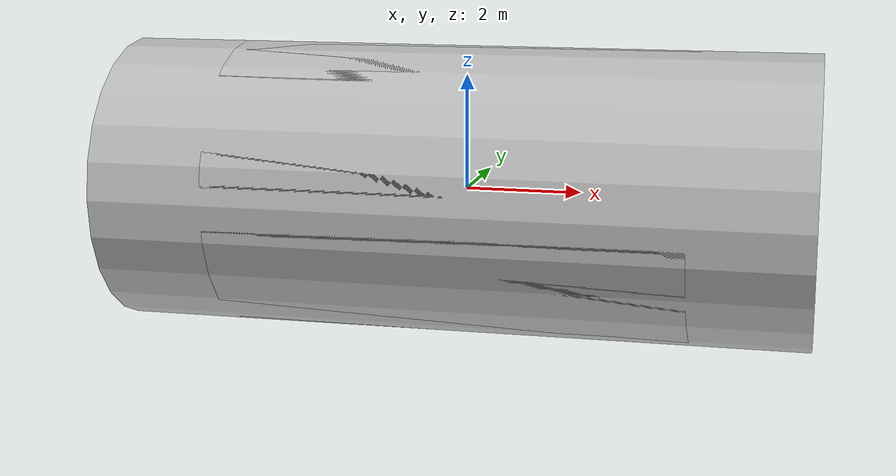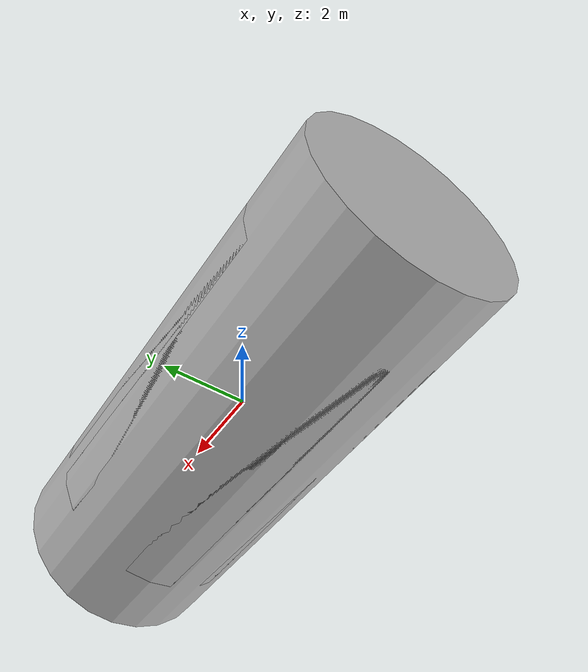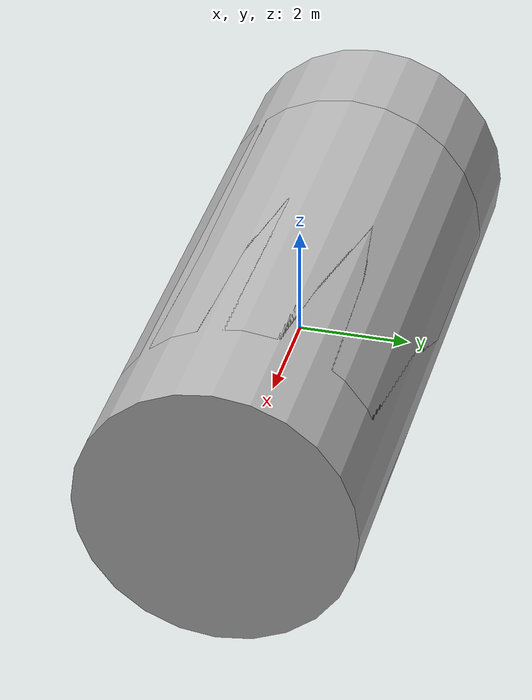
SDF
<?xml version="1.0"?>
<sdf version="1.6">
  <model name="spacestation">
    <joint name="eagle_tiger_joint" type="fixed">
      <parent>Eagle::docking_port_y_positive</parent>
      <child>Tiger::base_link</child>
      <pose>4.5 0 0 0 0 0</pose>
    </joint>
    <joint name="eagle_panther_joint" type="fixed">
      <parent>Eagle::docking_port_y_negative</parent>
      <child>Panther::base_link</child>
      <pose>4.5 0 0 0 0 0 </pose>
    </joint>
  <link name="Eagle::base_link">
      <inertial>
        <mass>12000.0</mass>
        <inertia>
          <ixx>1200.0</ixx>
          <ixy>0.0</ixy>
          <ixz>0.0</ixz>
          <iyy>300.0</iyy>
          <iyz>0.0</iyz>
          <izz>300.0</izz>
        </inertia>
      </inertial>
      <collision name="collision">
        <pose>0 0 0 0 1.5708 0</pose>

        <geometry>
          <cylinder>
            <radius>2.5</radius>
            <length>12.0</length>
          </cylinder>
        </geometry>
      </collision>
      <visual name="visual">
        <pose>0 0 0 0 1.5708 0</pose>
        <geometry>
          <cylinder>
            <radius>2.5</radius>
            <length>12.0</length>
          </cylinder>
        </geometry>
      </visual>
    </link>

    <link name="Eagle::thruster_x_positive_1">
      <visual name="visual">
        <pose>0 0 0 0 1.5708 0</pose>
        <geometry>
          <cylinder>
            <radius>0.2</radius>
            <length>0.3</length>
          </cylinder>
        </geometry>
      </visual>
    </link>
    <link name="Eagle::thruster_x_positive_2">
      <visual name="visual">
        <pose>0 0 0 0 1.5708 0</pose>
        <geometry>
          <cylinder>
            <radius>0.2</radius>
            <length>0.3</length>
          </cylinder>
        </geometry>
      </visual>
    </link>
    <link name="Eagle::thruster_x_negative_1">
      <visual name="visual">
        <pose>0 0 0 0 1.5708 0</pose>
        <geometry>
          <cylinder>
            <radius>0.2</radius>
            <length>0.3</length>
          </cylinder>
        </geometry>
      </visual>
    </link>
    <link name="Eagle::thruster_x_negative_2">
      <visual name="visual">
        <pose>0 0 0 0 1.5708 0</pose>
        <geometry>
          <cylinder>
            <radius>0.2</radius>
            <length>0.3</length>
          </cylinder>
        </geometry>
      </visual>
    </link>
    <link name="Eagle::thruster_y_positive_1">
      <visual name="visual">
        <pose>0 0 0 0 1.5708 0</pose>
        <geometry>
          <cylinder>
            <radius>0.2</radius>
            <length>0.3</length>
          </cylinder>
        </geometry>
      </visual>
    </link>
    <link name="Eagle::thruster_y_positive_2">
      <visual name="visual">
        <pose>0 0 0 0 1.5708 0</pose>
        <geometry>
          <cylinder>
            <radius>0.2</radius>
            <length>0.3</length>
          </cylinder>
        </geometry>
      </visual>
    </link>
    <link name="Eagle::thruster_y_negative_1">
      <visual name="visual">
        <pose>0 0 0 0 1.5708 0</pose>
        <geometry>
          <cylinder>
            <radius>0.2</radius>
            <length>0.3</length>
          </cylinder>
        </geometry>
      </visual>
    </link>
    <link name="Eagle::thruster_y_negative_2">
      <visual name="visual">
        <pose>0 0 0 0 1.5708 0</pose>
        <geometry>
          <cylinder>
            <radius>0.2</radius>
            <length>0.3</length>
          </cylinder>
        </geometry>
      </visual>
    </link>
    <link name="Eagle::thruster_z_positive_1">
      <visual name="visual">
        <pose>0 0 0 0 1.5708 0</pose>
        <geometry>
          <cylinder>
            <radius>0.2</radius>
            <length>0.3</length>
          </cylinder>
        </geometry>
      </visual>
    </link>
    <link name="Eagle::thruster_z_positive_2">
      <visual name="visual">
        <pose>0 0 0 0 1.5708 0</pose>
        <geometry>
          <cylinder>
            <radius>0.2</radius>
            <length>0.3</length>
          </cylinder>
        </geometry>
      </visual>
    </link>
    <link name="Eagle::thruster_z_negative_1">
      <visual name="visual">
        <pose>0 0 0 0 1.5708 0</pose>
        <geometry>
          <cylinder>
            <radius>0.2</radius>
            <length>0.3</length>
          </cylinder>
        </geometry>
      </visual>
    </link>
    <link name="Eagle::thruster_z_negative_2">
      <visual name="visual">
        <pose>0 0 0 0 1.5708 0</pose>
        <geometry>
          <cylinder>
            <radius>0.2</radius>
            <length>0.3</length>
          </cylinder>
        </geometry>
      </visual>
    </link>

    <joint name="Eagle::thruster_x_positive_joint_1" type="fixed">
      <parent>Eagle::base_link</parent>
      <child>Eagle::thruster_x_positive_1</child>
      <pose>-5.7 2.7 0.0 0.0 0.0 0.0</pose>
    </joint>
    <joint name="Eagle::thruster_x_positive_joint_2" type="fixed">
      <parent>Eagle::base_link</parent>
      <child>Eagle::thruster_x_positive_2</child>
      <pose>-5.7 -2.7 0.0 0.0 0.0 0.0</pose>
    </joint>
    <joint name="Eagle::thruster_x_negative_joint_1" type="fixed">
      <parent>Eagle::base_link</parent>
      <child>Eagle::thruster_x_negative_1</child>
      <pose>5.7 2.7 0.0 0.0 0.0 3.1459</pose>
    </joint>
    <joint name="Eagle::thruster_x_negative_joint_2" type="fixed">
      <parent>Eagle::base_link</parent>
      <child>Eagle::thruster_x_negative_2</child>
      <pose>5.7 -2.7 0.0 0.0 0.0 3.1459</pose>
    </joint>
    <joint name="Eagle::thruster_y_positive_joint_1" type="fixed">
      <parent>Eagle::base_link</parent>
      <child>Eagle::thruster_y_positive_1</child>
      <pose>0.0 0.3 2.6 0.0 0.0 1.5708</pose>
    </joint>
    <joint name="Eagle::thruster_y_positive_joint_2" type="fixed">
      <parent>Eagle::base_link</parent>
      <child>Eagle::thruster_y_positive_2</child>
      <pose>0.0 -0.3 2.6 0.0 0.0 1.5708</pose>
    </joint>
    <joint name="Eagle::thruster_y_negative_joint_1" type="fixed">
      <parent>Eagle::base_link</parent>
      <child>Eagle::thruster_y_negative_1</child>
      <pose>0.0 0.3 -2.6 0.0 0.0 -1.5708</pose>
    </joint>
    <joint name="Eagle::thruster_y_negative_joint_2" type="fixed">
      <parent>Eagle::base_link</parent>
      <child>Eagle::thruster_y_negative_2</child>
      <pose>0.0 -0.3 -2.6 0.0 0.0 -1.5708</pose>
    </joint>
    <joint name="Eagle::thruster_z_positive_joint_1" type="fixed">
      <parent>Eagle::base_link</parent>
      <child>Eagle::thruster_z_positive_1</child>
      <pose>5.8 0.0 2.7 0.0 1.5708 0.0</pose>
    </joint>
    <joint name="Eagle::thruster_z_positive_joint_2" type="fixed">
      <parent>Eagle::base_link</parent>
      <child>Eagle::thruster_z_positive_2</child>
      <pose>-5.8 0.0 2.7 0.0 1.5708 0.0</pose>
    </joint>
    <joint name="Eagle::thruster_z_negative_joint_1" type="fixed">
      <parent>Eagle::base_link</parent>
      <child>Eagle::thruster_z_negative_1</child>
      <pose>5.8 0.0 -2.7 0.0 -1.5708 0.0</pose>
    </joint>
    <joint name="Eagle::thruster_z_negative_joint_2" type="fixed">
      <parent>Eagle::base_link</parent>
      <child>Eagle::thruster_z_negative_2</child>
      <pose>-5.8 0.0 -2.7 0.0 -1.5708 0.0</pose>
    </joint>

    <actuator>
      <thruster>
        <force>30.0</force>
      </thruster>
    </actuator>

    <link name="Eagle::docking_port_x_positive">
      <collision name="collision_docking_port_x_positive">
        <pose>0 0 0 0 1.5708 0</pose>
        <geometry>
          <cylinder>
            <radius>1.5</radius>
            <length>0.4</length>
          </cylinder>
        </geometry>
      </collision>
      <visual name="visual_docking_port_x_positive">
        <pose>0 0 0 0 1.5708 0</pose>
        <geometry>
          <cylinder>
            <radius>1.5</radius>
            <length>0.4</length>
          </cylinder>
        </geometry>
      </visual>
    </link>
    <link name="Eagle::docking_port_y_positive">
      <collision name="collision_docking_port_y_positive">
        <pose>0 0 0 0 1.5708 0</pose>
        <geometry>
          <cylinder>
            <radius>1.5</radius>
            <length>0.4</length>
          </cylinder>
        </geometry>
      </collision>
      <visual name="visual_docking_port_y_positive">
        <pose>0 0 0 0 1.5708 0</pose>
        <geometry>
          <cylinder>
            <radius>1.5</radius>
            <length>0.4</length>
          </cylinder>
        </geometry>
      </visual>
    </link>
    <link name="Eagle::docking_port_y_negative">
      <collision name="collision_docking_port_y_negative">
        <pose>0 0 0 0 1.5708 0</pose>
        <geometry>
          <cylinder>
            <radius>1.5</radius>
            <length>0.4</length>
          </cylinder>
        </geometry>
      </collision>
      <visual name="visual_docking_port_y_negative">
        <pose>0 0 0 0 1.5708 0</pose>
        <geometry>
          <cylinder>
            <radius>1.5</radius>
            <length>0.4</length>
          </cylinder>
        </geometry>
      </visual>
    </link>
    <joint name="Eagle::docking_port_x_positive_joint" type="fixed">
      <parent>Eagle::base_link</parent>
      <child>Eagle::docking_port_x_positive</child>
      <pose>6.5 0.0 0.0 0.0 0.0 0.0</pose>
    </joint>
    <joint name="Eagle::docking_port_y_positive_joint" type="fixed">
      <parent>Eagle::base_link</parent>
      <child>Eagle::docking_port_y_positive</child>
      <pose>0.0 2.5 0.0 0.0 0.0 1.5708</pose>
    </joint>
    <joint name="Eagle::docking_port_y_negative_joint" type="fixed">
      <parent>Eagle::base_link</parent>
      <child>Eagle::docking_port_y_negative</child>
      <pose>0.0 -2.5 0.0 0.0 0.0 -1.5708</pose>
    </joint>
  <link name="Tiger::base_link">
      <inertial>
        <mass>8000.0</mass>
        <inertia>
          <ixx>800.0</ixx>
          <ixy>0.0</ixy>
          <ixz>0.0</ixz>
          <iyy>300.0</iyy>
          <iyz>0.0</iyz>
          <izz>300.0</izz>
        </inertia>
      </inertial>
      <collision name="collision">
        <pose>0 0 0 0 1.5708 0</pose>

        <geometry>
          <cylinder>
            <radius>2.5</radius>
            <length>8.0</length>
          </cylinder>
        </geometry>
      </collision>
      <visual name="visual">
        <pose>0 0 0 0 1.5708 0</pose>
        <geometry>
          <cylinder>
            <radius>2.5</radius>
            <length>8.0</length>
          </cylinder>
        </geometry>
      </visual>
    </link>

    <link name="Tiger::thruster_x_positive_1">
      <visual name="visual">
        <pose>0 0 0 0 1.5708 0</pose>
        <geometry>
          <cylinder>
            <radius>0.2</radius>
            <length>0.3</length>
          </cylinder>
        </geometry>
      </visual>
    </link>
    <link name="Tiger::thruster_x_positive_2">
      <visual name="visual">
        <pose>0 0 0 0 1.5708 0</pose>
        <geometry>
          <cylinder>
            <radius>0.2</radius>
            <length>0.3</length>
          </cylinder>
        </geometry>
      </visual>
    </link>
    <link name="Tiger::thruster_x_negative_1">
      <visual name="visual">
        <pose>0 0 0 0 1.5708 0</pose>
        <geometry>
          <cylinder>
            <radius>0.2</radius>
            <length>0.3</length>
          </cylinder>
        </geometry>
      </visual>
    </link>
    <link name="Tiger::thruster_x_negative_2">
      <visual name="visual">
        <pose>0 0 0 0 1.5708 0</pose>
        <geometry>
          <cylinder>
            <radius>0.2</radius>
            <length>0.3</length>
          </cylinder>
        </geometry>
      </visual>
    </link>
    <link name="Tiger::thruster_y_positive_1">
      <visual name="visual">
        <pose>0 0 0 0 1.5708 0</pose>
        <geometry>
          <cylinder>
            <radius>0.2</radius>
            <length>0.3</length>
          </cylinder>
        </geometry>
      </visual>
    </link>
    <link name="Tiger::thruster_y_positive_2">
      <visual name="visual">
        <pose>0 0 0 0 1.5708 0</pose>
        <geometry>
          <cylinder>
            <radius>0.2</radius>
            <length>0.3</length>
          </cylinder>
        </geometry>
      </visual>
    </link>
    <link name="Tiger::thruster_y_negative_1">
      <visual name="visual">
        <pose>0 0 0 0 1.5708 0</pose>
        <geometry>
          <cylinder>
            <radius>0.2</radius>
            <length>0.3</length>
          </cylinder>
        </geometry>
      </visual>
    </link>
    <link name="Tiger::thruster_y_negative_2">
      <visual name="visual">
        <pose>0 0 0 0 1.5708 0</pose>
        <geometry>
          <cylinder>
            <radius>0.2</radius>
            <length>0.3</length>
          </cylinder>
        </geometry>
      </visual>
    </link>
    <link name="Tiger::thruster_z_positive_1">
      <visual name="visual">
        <pose>0 0 0 0 1.5708 0</pose>
        <geometry>
          <cylinder>
            <radius>0.2</radius>
            <length>0.3</length>
          </cylinder>
        </geometry>
      </visual>
    </link>
    <link name="Tiger::thruster_z_positive_2">
      <visual name="visual">
        <pose>0 0 0 0 1.5708 0</pose>
        <geometry>
          <cylinder>
            <radius>0.2</radius>
            <length>0.3</length>
          </cylinder>
        </geometry>
      </visual>
    </link>
    <link name="Tiger::thruster_z_negative_1">
      <visual name="visual">
        <pose>0 0 0 0 1.5708 0</pose>
        <geometry>
          <cylinder>
            <radius>0.2</radius>
            <length>0.3</length>
          </cylinder>
        </geometry>
      </visual>
    </link>
    <link name="Tiger::thruster_z_negative_2">
      <visual name="visual">
        <pose>0 0 0 0 1.5708 0</pose>
        <geometry>
          <cylinder>
            <radius>0.2</radius>
            <length>0.3</length>
          </cylinder>
        </geometry>
      </visual>
    </link>

    <joint name="Tiger::thruster_x_positive_joint_1" type="fixed">
      <parent>Eagle::base_link</parent>
      <child>Tiger::thruster_x_positive_1</child>
      <pose>-2.5999864091235776 3.2999904496916925 0.0 0.0 0.0 1.5708</pose>
    </joint>
    <joint name="Tiger::thruster_x_positive_joint_2" type="fixed">
      <parent>Eagle::base_link</parent>
      <child>Tiger::thruster_x_positive_2</child>
      <pose>2.600013590841342 3.30000955035823 0.0 0.0 0.0 1.5708</pose>
    </joint>
    <joint name="Tiger::thruster_x_negative_joint_1" type="fixed">
      <parent>Eagle::base_link</parent>
      <child>Tiger::thruster_x_negative_1</child>
      <pose>-2.600013590841342 10.69999044964177 0.0 0.0 0.0 4.7167</pose>
    </joint>
    <joint name="Tiger::thruster_x_negative_joint_2" type="fixed">
      <parent>Eagle::base_link</parent>
      <child>Tiger::thruster_x_negative_2</child>
      <pose>2.5999864091235776 10.700009550308307 0.0 0.0 0.0 4.7167</pose>
    </joint>
    <joint name="Tiger::thruster_y_positive_joint_1" type="fixed">
      <parent>Eagle::base_link</parent>
      <child>Tiger::thruster_y_positive_1</child>
      <pose>-0.2999999999979761 6.999998898038469 2.6 0.0 0.0 3.1416</pose>
    </joint>
    <joint name="Tiger::thruster_y_positive_joint_2" type="fixed">
      <parent>Eagle::base_link</parent>
      <child>Tiger::thruster_y_positive_2</child>
      <pose>0.2999999999979761 7.000001101961531 2.6 0.0 0.0 3.1416</pose>
    </joint>
    <joint name="Tiger::thruster_y_negative_joint_1" type="fixed">
      <parent>Eagle::base_link</parent>
      <child>Tiger::thruster_y_negative_1</child>
      <pose>-0.2999999999979761 6.999998898038469 -2.6 0.0 0.0 0.0</pose>
    </joint>
    <joint name="Tiger::thruster_y_negative_joint_2" type="fixed">
      <parent>Eagle::base_link</parent>
      <child>Tiger::thruster_y_negative_2</child>
      <pose>0.2999999999979761 7.000001101961531 -2.6 0.0 0.0 0.0</pose>
    </joint>
    <joint name="Tiger::thruster_z_positive_joint_1" type="fixed">
      <parent>Eagle::base_link</parent>
      <child>Tiger::thruster_z_positive_1</child>
      <pose>-1.395817939271698e-05 10.799999999974364 2.7 0.0 1.5708 1.5708</pose>
    </joint>
    <joint name="Tiger::thruster_z_positive_joint_2" type="fixed">
      <parent>Eagle::base_link</parent>
      <child>Tiger::thruster_z_positive_2</child>
      <pose>1.395817939271698e-05 3.200000000025636 2.7 0.0 1.5708 1.5708</pose>
    </joint>
    <joint name="Tiger::thruster_z_negative_joint_1" type="fixed">
      <parent>Eagle::base_link</parent>
      <child>Tiger::thruster_z_negative_1</child>
      <pose>-1.395817939271698e-05 10.799999999974364 -2.7 0.0 -1.5708 1.5708</pose>
    </joint>
    <joint name="Tiger::thruster_z_negative_joint_2" type="fixed">
      <parent>Eagle::base_link</parent>
      <child>Tiger::thruster_z_negative_2</child>
      <pose>1.395817939271698e-05 3.200000000025636 -2.7 0.0 -1.5708 1.5708</pose>
    </joint>

    <actuator>
      <thruster>
        <force>30.0</force>
      </thruster>
    </actuator>

    <link name="Tiger::docking_port_x_positive">
      <collision name="collision_docking_port_x_positive">
        <pose>0 0 0 0 1.5708 0</pose>
        <geometry>
          <cylinder>
            <radius>1.5</radius>
            <length>0.4</length>
          </cylinder>
        </geometry>
      </collision>
      <visual name="visual_docking_port_x_positive">
        <pose>0 0 0 0 1.5708 0</pose>
        <geometry>
          <cylinder>
            <radius>1.5</radius>
            <length>0.4</length>
          </cylinder>
        </geometry>
      </visual>
    </link>
    <link name="Tiger::docking_port_y_positive">
      <collision name="collision_docking_port_y_positive">
        <pose>0 0 0 0 1.5708 0</pose>
        <geometry>
          <cylinder>
            <radius>1.5</radius>
            <length>0.4</length>
          </cylinder>
        </geometry>
      </collision>
      <visual name="visual_docking_port_y_positive">
        <pose>0 0 0 0 1.5708 0</pose>
        <geometry>
          <cylinder>
            <radius>1.5</radius>
            <length>0.4</length>
          </cylinder>
        </geometry>
      </visual>
    </link>
    <link name="Tiger::docking_port_y_negative">
      <collision name="collision_docking_port_y_negative">
        <pose>0 0 0 0 1.5708 0</pose>
        <geometry>
          <cylinder>
            <radius>1.5</radius>
            <length>0.4</length>
          </cylinder>
        </geometry>
      </collision>
      <visual name="visual_docking_port_y_negative">
        <pose>0 0 0 0 1.5708 0</pose>
        <geometry>
          <cylinder>
            <radius>1.5</radius>
            <length>0.4</length>
          </cylinder>
        </geometry>
      </visual>
    </link>
    <joint name="Tiger::docking_port_x_positive_joint" type="fixed">
      <parent>Eagle::base_link</parent>
      <child>Tiger::docking_port_x_positive</child>
      <pose>-1.6529422965059584e-05 11.499999999969642 0.0 0.0 0.0 1.5708</pose>
    </joint>
    <joint name="Tiger::docking_port_y_positive_joint" type="fixed">
      <parent>Eagle::base_link</parent>
      <child>Tiger::docking_port_y_positive</child>
      <pose>-2.4999999999831344 6.999990816987242 0.0 0.0 0.0 3.1416</pose>
    </joint>
    <joint name="Tiger::docking_port_y_negative_joint" type="fixed">
      <parent>Eagle::base_link</parent>
      <child>Tiger::docking_port_y_negative</child>
      <pose>2.4999999999831344 7.000009183012758 0.0 0.0 0.0 0.0</pose>
    </joint>
  <link name="Panther::base_link">
      <inertial>
        <mass>8000.0</mass>
        <inertia>
          <ixx>800.0</ixx>
          <ixy>0.0</ixy>
          <ixz>0.0</ixz>
          <iyy>300.0</iyy>
          <iyz>0.0</iyz>
          <izz>300.0</izz>
        </inertia>
      </inertial>
      <collision name="collision">
        <pose>0 0 0 0 1.5708 0</pose>

        <geometry>
          <cylinder>
            <radius>2.5</radius>
            <length>8.0</length>
          </cylinder>
        </geometry>
      </collision>
      <visual name="visual">
        <pose>0 0 0 0 1.5708 0</pose>
        <geometry>
          <cylinder>
            <radius>2.5</radius>
            <length>8.0</length>
          </cylinder>
        </geometry>
      </visual>
    </link>

    <link name="Panther::thruster_x_positive_1">
      <visual name="visual">
        <pose>0 0 0 0 1.5708 0</pose>
        <geometry>
          <cylinder>
            <radius>0.2</radius>
            <length>0.3</length>
          </cylinder>
        </geometry>
      </visual>
    </link>
    <link name="Panther::thruster_x_positive_2">
      <visual name="visual">
        <pose>0 0 0 0 1.5708 0</pose>
        <geometry>
          <cylinder>
            <radius>0.2</radius>
            <length>0.3</length>
          </cylinder>
        </geometry>
      </visual>
    </link>
    <link name="Panther::thruster_x_negative_1">
      <visual name="visual">
        <pose>0 0 0 0 1.5708 0</pose>
        <geometry>
          <cylinder>
            <radius>0.2</radius>
            <length>0.3</length>
          </cylinder>
        </geometry>
      </visual>
    </link>
    <link name="Panther::thruster_x_negative_2">
      <visual name="visual">
        <pose>0 0 0 0 1.5708 0</pose>
        <geometry>
          <cylinder>
            <radius>0.2</radius>
            <length>0.3</length>
          </cylinder>
        </geometry>
      </visual>
    </link>
    <link name="Panther::thruster_y_positive_1">
      <visual name="visual">
        <pose>0 0 0 0 1.5708 0</pose>
        <geometry>
          <cylinder>
            <radius>0.2</radius>
            <length>0.3</length>
          </cylinder>
        </geometry>
      </visual>
    </link>
    <link name="Panther::thruster_y_positive_2">
      <visual name="visual">
        <pose>0 0 0 0 1.5708 0</pose>
        <geometry>
          <cylinder>
            <radius>0.2</radius>
            <length>0.3</length>
          </cylinder>
        </geometry>
      </visual>
    </link>
    <link name="Panther::thruster_y_negative_1">
      <visual name="visual">
        <pose>0 0 0 0 1.5708 0</pose>
        <geometry>
          <cylinder>
            <radius>0.2</radius>
            <length>0.3</length>
          </cylinder>
        </geometry>
      </visual>
    </link>
    <link name="Panther::thruster_y_negative_2">
      <visual name="visual">
        <pose>0 0 0 0 1.5708 0</pose>
        <geometry>
          <cylinder>
            <radius>0.2</radius>
            <length>0.3</length>
          </cylinder>
        </geometry>
      </visual>
    </link>
    <link name="Panther::thruster_z_positive_1">
      <visual name="visual">
        <pose>0 0 0 0 1.5708 0</pose>
        <geometry>
          <cylinder>
            <radius>0.2</radius>
            <length>0.3</length>
          </cylinder>
        </geometry>
      </visual>
    </link>
    <link name="Panther::thruster_z_positive_2">
      <visual name="visual">
        <pose>0 0 0 0 1.5708 0</pose>
        <geometry>
          <cylinder>
            <radius>0.2</radius>
            <length>0.3</length>
          </cylinder>
        </geometry>
      </visual>
    </link>
    <link name="Panther::thruster_z_negative_1">
      <visual name="visual">
        <pose>0 0 0 0 1.5708 0</pose>
        <geometry>
          <cylinder>
            <radius>0.2</radius>
            <length>0.3</length>
          </cylinder>
        </geometry>
      </visual>
    </link>
    <link name="Panther::thruster_z_negative_2">
      <visual name="visual">
        <pose>0 0 0 0 1.5708 0</pose>
        <geometry>
          <cylinder>
            <radius>0.2</radius>
            <length>0.3</length>
          </cylinder>
        </geometry>
      </visual>
    </link>

    <joint name="Panther::thruster_x_positive_joint_1" type="fixed">
      <parent>Eagle::base_link</parent>
      <child>Panther::thruster_x_positive_1</child>
      <pose>2.600013590841342 -3.30000955035823 0.0 0.0 0.0 -1.5708</pose>
    </joint>
    <joint name="Panther::thruster_x_positive_joint_2" type="fixed">
      <parent>Eagle::base_link</parent>
      <child>Panther::thruster_x_positive_2</child>
      <pose>-2.5999864091235776 -3.2999904496916925 0.0 0.0 0.0 -1.5708</pose>
    </joint>
    <joint name="Panther::thruster_x_negative_joint_1" type="fixed">
      <parent>Eagle::base_link</parent>
      <child>Panther::thruster_x_negative_1</child>
      <pose>2.5999864091235776 -10.700009550308307 0.0 0.0 0.0 1.5751000000000002</pose>
    </joint>
    <joint name="Panther::thruster_x_negative_joint_2" type="fixed">
      <parent>Eagle::base_link</parent>
      <child>Panther::thruster_x_negative_2</child>
      <pose>-2.600013590841342 -10.69999044964177 0.0 0.0 0.0 1.5751000000000002</pose>
    </joint>
    <joint name="Panther::thruster_y_positive_joint_1" type="fixed">
      <parent>Eagle::base_link</parent>
      <child>Panther::thruster_y_positive_1</child>
      <pose>0.2999999999979761 -7.000001101961531 2.6 0.0 0.0 0.0</pose>
    </joint>
    <joint name="Panther::thruster_y_positive_joint_2" type="fixed">
      <parent>Eagle::base_link</parent>
      <child>Panther::thruster_y_positive_2</child>
      <pose>-0.2999999999979761 -6.999998898038469 2.6 0.0 0.0 0.0</pose>
    </joint>
    <joint name="Panther::thruster_y_negative_joint_1" type="fixed">
      <parent>Eagle::base_link</parent>
      <child>Panther::thruster_y_negative_1</child>
      <pose>0.2999999999979761 -7.000001101961531 -2.6 0.0 0.0 -3.1416</pose>
    </joint>
    <joint name="Panther::thruster_y_negative_joint_2" type="fixed">
      <parent>Eagle::base_link</parent>
      <child>Panther::thruster_y_negative_2</child>
      <pose>-0.2999999999979761 -6.999998898038469 -2.6 0.0 0.0 -3.1416</pose>
    </joint>
    <joint name="Panther::thruster_z_positive_joint_1" type="fixed">
      <parent>Eagle::base_link</parent>
      <child>Panther::thruster_z_positive_1</child>
      <pose>-1.395817939271698e-05 -10.799999999974364 2.7 0.0 1.5708 -1.5708</pose>
    </joint>
    <joint name="Panther::thruster_z_positive_joint_2" type="fixed">
      <parent>Eagle::base_link</parent>
      <child>Panther::thruster_z_positive_2</child>
      <pose>1.395817939271698e-05 -3.200000000025636 2.7 0.0 1.5708 -1.5708</pose>
    </joint>
    <joint name="Panther::thruster_z_negative_joint_1" type="fixed">
      <parent>Eagle::base_link</parent>
      <child>Panther::thruster_z_negative_1</child>
      <pose>-1.395817939271698e-05 -10.799999999974364 -2.7 0.0 -1.5708 -1.5708</pose>
    </joint>
    <joint name="Panther::thruster_z_negative_joint_2" type="fixed">
      <parent>Eagle::base_link</parent>
      <child>Panther::thruster_z_negative_2</child>
      <pose>1.395817939271698e-05 -3.200000000025636 -2.7 0.0 -1.5708 -1.5708</pose>
    </joint>

    <actuator>
      <thruster>
        <force>30.0</force>
      </thruster>
    </actuator>

    <link name="Panther::docking_port_x_positive">
      <collision name="collision_docking_port_x_positive">
        <pose>0 0 0 0 1.5708 0</pose>
        <geometry>
          <cylinder>
            <radius>1.5</radius>
            <length>0.4</length>
          </cylinder>
        </geometry>
      </collision>
      <visual name="visual_docking_port_x_positive">
        <pose>0 0 0 0 1.5708 0</pose>
        <geometry>
          <cylinder>
            <radius>1.5</radius>
            <length>0.4</length>
          </cylinder>
        </geometry>
      </visual>
    </link>
    <link name="Panther::docking_port_y_positive">
      <collision name="collision_docking_port_y_positive">
        <pose>0 0 0 0 1.5708 0</pose>
        <geometry>
          <cylinder>
            <radius>1.5</radius>
            <length>0.4</length>
          </cylinder>
        </geometry>
      </collision>
      <visual name="visual_docking_port_y_positive">
        <pose>0 0 0 0 1.5708 0</pose>
        <geometry>
          <cylinder>
            <radius>1.5</radius>
            <length>0.4</length>
          </cylinder>
        </geometry>
      </visual>
    </link>
    <link name="Panther::docking_port_y_negative">
      <collision name="collision_docking_port_y_negative">
        <pose>0 0 0 0 1.5708 0</pose>
        <geometry>
          <cylinder>
            <radius>1.5</radius>
            <length>0.4</length>
          </cylinder>
        </geometry>
      </collision>
      <visual name="visual_docking_port_y_negative">
        <pose>0 0 0 0 1.5708 0</pose>
        <geometry>
          <cylinder>
            <radius>1.5</radius>
            <length>0.4</length>
          </cylinder>
        </geometry>
      </visual>
    </link>
    <joint name="Panther::docking_port_x_positive_joint" type="fixed">
      <parent>Eagle::base_link</parent>
      <child>Panther::docking_port_x_positive</child>
      <pose>-1.6529422965059584e-05 -11.499999999969642 0.0 0.0 0.0 -1.5708</pose>
    </joint>
    <joint name="Panther::docking_port_y_positive_joint" type="fixed">
      <parent>Eagle::base_link</parent>
      <child>Panther::docking_port_y_positive</child>
      <pose>2.4999999999831344 -7.000009183012758 0.0 0.0 0.0 0.0</pose>
    </joint>
    <joint name="Panther::docking_port_y_negative_joint" type="fixed">
      <parent>Eagle::base_link</parent>
      <child>Panther::docking_port_y_negative</child>
      <pose>-2.4999999999831344 -6.999990816987242 0.0 0.0 0.0 -3.1416</pose>
    </joint>
  </model>
</sdf>
